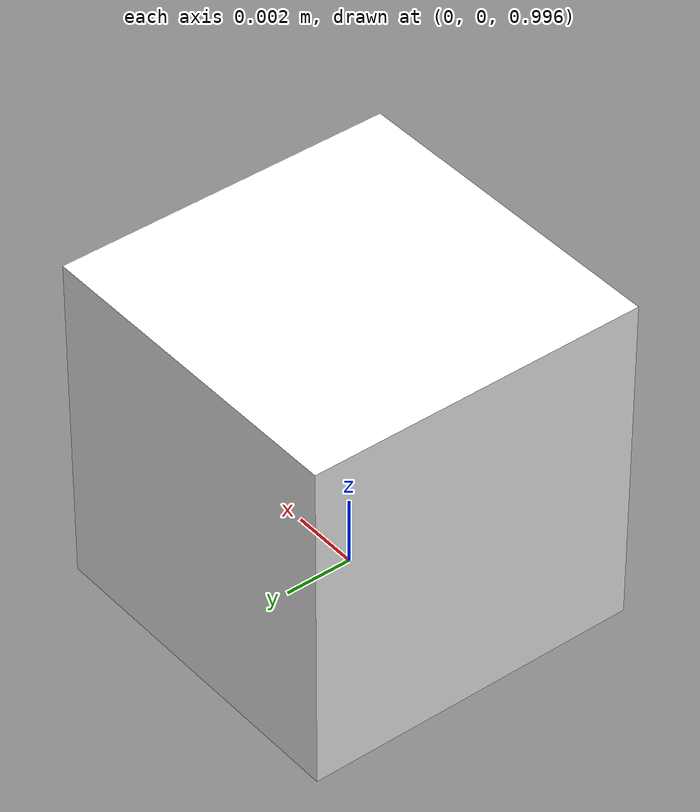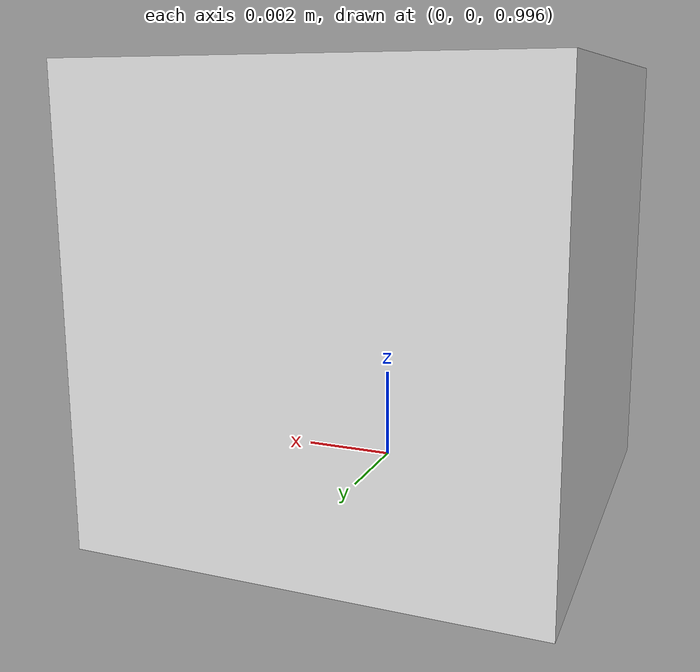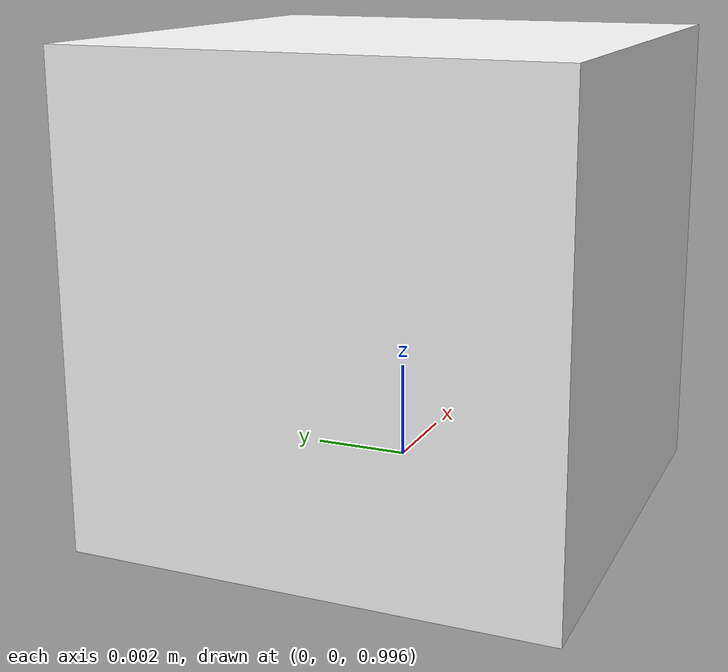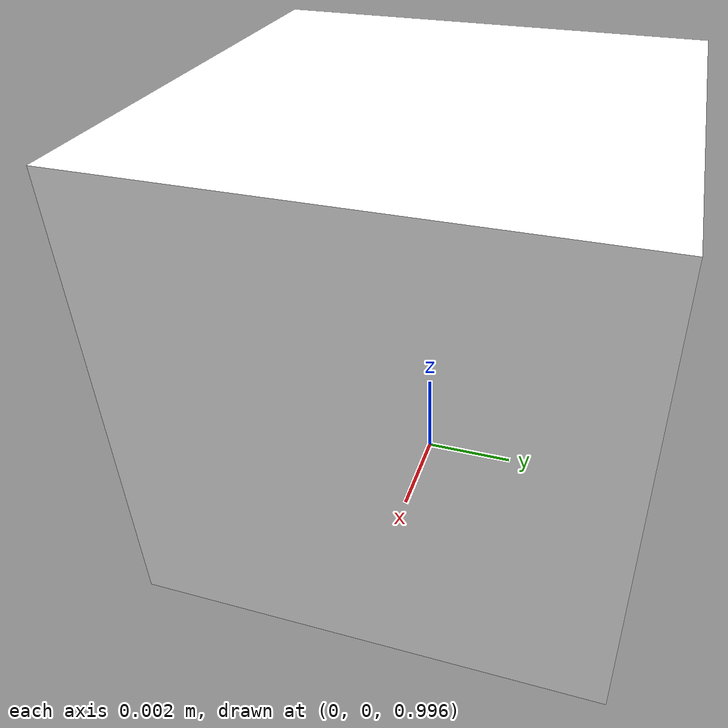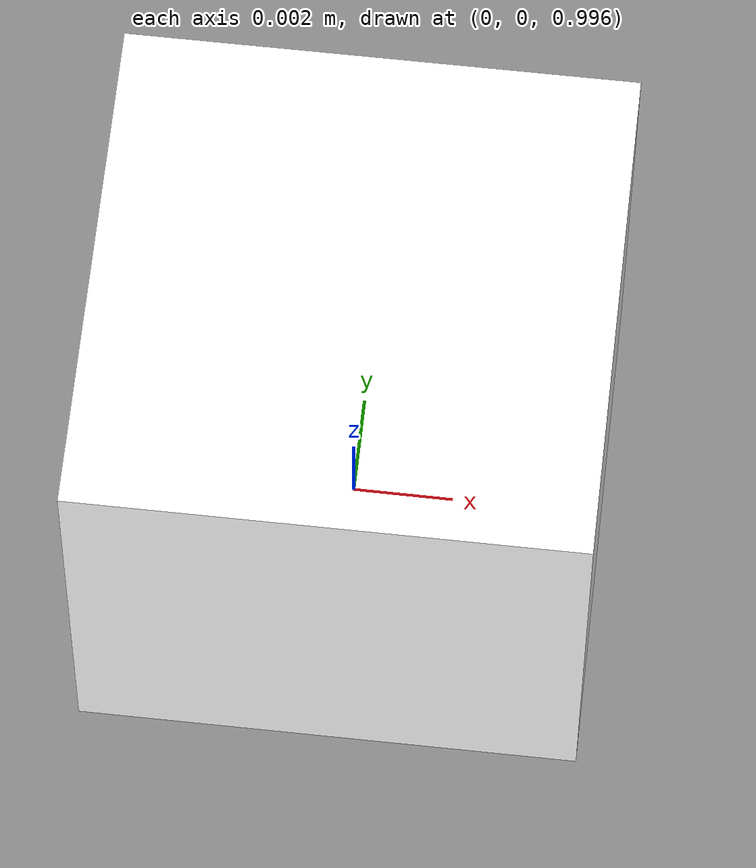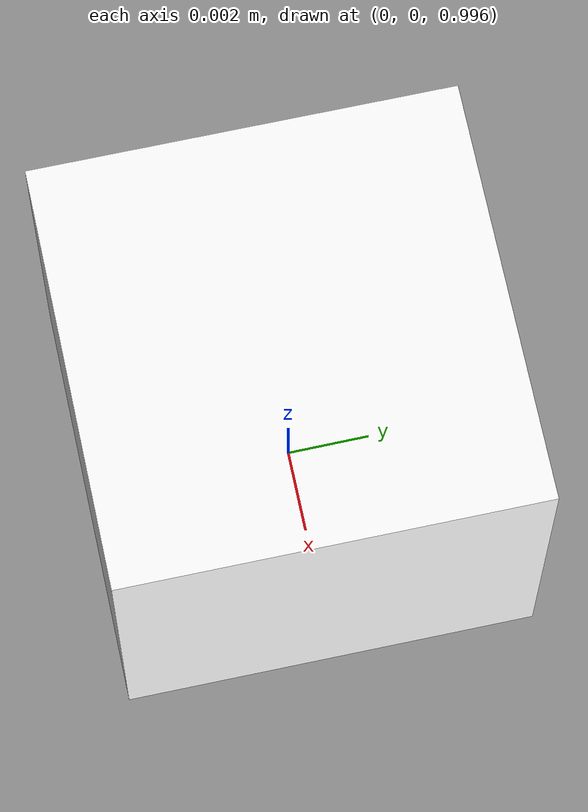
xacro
<?xml version="1.0"?>
<robot name="my_robo"
  xmlns:xacro="http://ros.org/wiki/xacro">
  <xacro:property name="M_PI" value="3.14159274"/>
  <material name="white">
    <color rgba="1 1 1 1"/>
  </material>
  <xacro:macro name="box_inertial" params="mass height width depth">
    <mass value="${mass}"/>
    <inertia ixx="${(mass*(width*width+depth*depth))/12}" ixy="0" ixz="0"
			 iyy="${(mass*(height*height+depth*depth))/12}" iyz="0"
			 izz="${(mass*(height*height+width*width))/12}" />
  </xacro:macro>
  <link name="world"/>
  <joint name="fixed" type="fixed">
    <parent link="world"/>
    <child link="base_link"/>
  </joint>
  <link name="base_link"/>
  <link name="d435_link">
    <visual>
      <geometry>
        <box size="0.01 0.01 0.01" />
      </geometry>
      <material name="white"/>
    </visual>
    <collision>
      <geometry>
        <box size="0.01 0.01 0.01" />
      </geometry>
    </collision>
    <inertial>
      <origin xyz="0 0 0" rpy="0 0 0"/>
      <xacro:box_inertial mass="1.0"
						   height="0.01" width="0.01" depth="0.01"/>
    </inertial>
  </link>
  <joint name="base_link_to_d435_link_joint" type="fixed">
    <origin xyz="0 0 1.0" rpy="0 0 0"/>
    <parent link="base_link"/>
    <child link="d435_link" />
  </joint>
  <link name="d435_link_optical"/>
  <joint name="d435_link_to_d435_link_optical_joint" type="fixed">
    <!-- these values have to be these values otherwise the gazebo camera
        image won't be aligned properly with the frame it is supposedly
        originating from -->
    <!--https://answers.ros.org/question/232534/gazebo-camera-frame-is-inconsistent-with-rviz-opencv-convention/?answer=232562#post-id-232562-->
    <origin xyz="0 0 0" rpy="${-pi/2} 0 ${-pi/2}"/>
    <parent link="d435_link"/>
    <child link="d435_link_optical"/>
  </joint>
  <!--  gazebo-->
  <gazebo>
    <plugin name="gazebo_ros_control" filename="libgazebo_ros_control.so">
      <robotNamespace>my_robo</robotNamespace>
    </plugin>
  </gazebo>
  <gazebo reference="d435_link">
    <sensor type="depth" name="d435">
      <update_rate>20</update_rate>
      <camera>
        <horizontal_fov>${85.2 * M_PI/180.0}</horizontal_fov>
        <image>
          <format>R8G8B8</format>
          <width>640</width>
          <height>480</height>
        </image>
        <clip>
          <near>0.01</near>
          <far>30</far>
        </clip>
      </camera>
      <plugin name="d435_camera_controller" filename="libgazebo_ros_openni_kinect.so">
        <baseline>0.2</baseline>
        <alwaysOn>true</alwaysOn>
        <updateRate>0.0</updateRate>
        <imageTopicName>d435/image_raw</imageTopicName>
        <cameraInfoTopicName>d435/camera_info</cameraInfoTopicName>
        <depthImageTopicName>d435/depth/image_raw</depthImageTopicName>
        <depthImageCameraInfoTopicName>d435/depth/camera_info</depthImageCameraInfoTopicName>
        <pointCloudTopicName>d435/depth/points</pointCloudTopicName>
        <frameName>d435_link_optical</frameName>
        <pointCloudCutoff>0.01</pointCloudCutoff>
        <pointCloudCutoffMax>15.0</pointCloudCutoffMax>
        <distortionK1>0</distortionK1>
        <distortionK2>0</distortionK2>
        <distortionK3>0</distortionK3>
        <distortionT1>0</distortionT1>
        <distortionT2>0</distortionT2>
        <CxPrime>0</CxPrime>
        <Cx>0</Cx>
        <Cy>0</Cy>
        <focalLength>0</focalLength>
        <hackBaseline>0</hackBaseline>
      </plugin>
    </sensor>
  </gazebo>
</robot>
